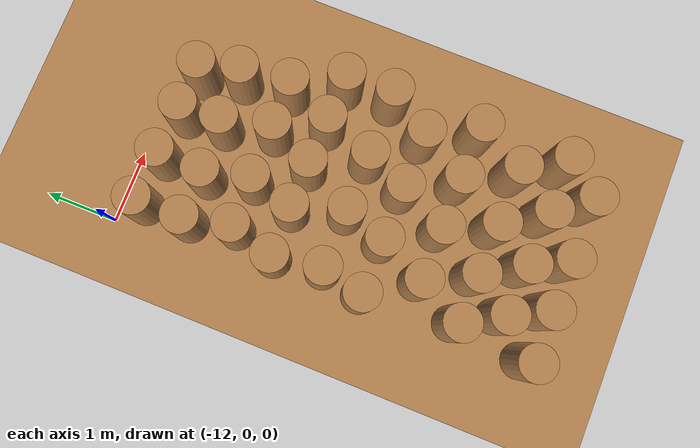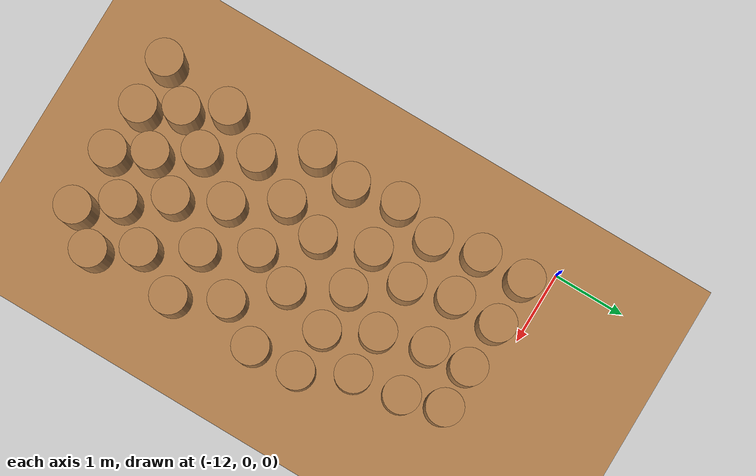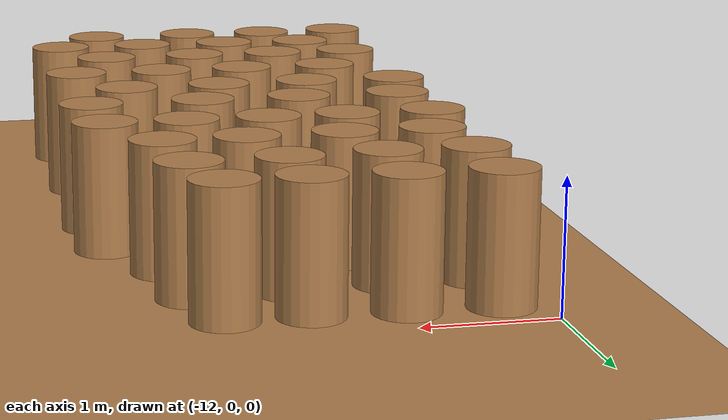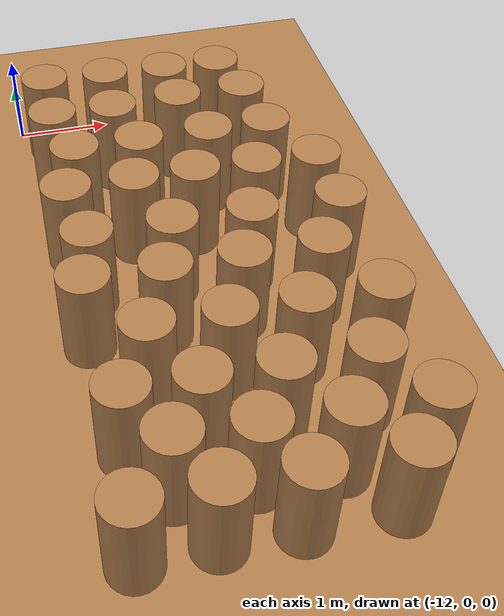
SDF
<sdf version="1.6">
 <world name="default">
  <model name="ground_plane">
   <pose>1.25 -2.75 0 0 -0 0</pose>
   <static>1</static>
   <link name="link">
    <collision name="collision">
     <geometry><plane><normal>0 0 1</normal><size>100 100</size></plane></geometry>
     <surface><friction><ode><mu>100</mu><mu2>50</mu2></ode></friction></surface>
    </collision>
    <visual name="visual">
     <cast_shadows>0</cast_shadows>
     <geometry><plane><normal>0 0 1</normal><size>32 34.75</size></plane></geometry>
     <material>
      <script><uri>file://media/materials/scripts/gazebo.material</uri><name>Gazebo/WoodFloor</name></script>
     </material>
    </visual>
   </link>
  </model>
  <model name="unit_cylinder_11_clone">
   <pose>-11.6124 -4.72432 0.499998 -1e-06 0 -1.1e-05</pose>
   <link name="link">
    <inertial>
     <mass>1</mass>
     <inertia><ixx>0.145833</ixx><ixy>0</ixy><ixz>0</ixz><iyy>0.145833</iyy><iyz>0</iyz><izz>0.125</izz></inertia>
    </inertial>
    <collision name="collision">
     <geometry><cylinder><radius>0.25</radius><length>1</length></cylinder></geometry>
    </collision>
    <visual name="visual">
     <geometry><cylinder><radius>0.25</radius><length>1</length></cylinder></geometry>
     <material>
      <script><name>Gazebo/Wood</name><uri>file://media/materials/scripts/gazebo.material</uri></script>
     </material>
    </visual>
   </link>
  </model>
  <model name="unit_cylinder_11_clone_0">
   <pose>-10.9561 -4.73459 0.499992 1e-06 -1e-06 -1.1e-05</pose>
   <link name="link">
    <inertial>
     <mass>1</mass>
     <inertia><ixx>0.145833</ixx><ixy>0</ixy><ixz>0</ixz><iyy>0.145833</iyy><iyz>0</iyz><izz>0.125</izz></inertia>
    </inertial>
    <collision name="collision">
     <geometry><cylinder><radius>0.25</radius><length>1</length></cylinder></geometry>
    </collision>
    <visual name="visual">
     <geometry><cylinder><radius>0.25</radius><length>1</length></cylinder></geometry>
     <material>
      <script><name>Gazebo/Wood</name><uri>file://media/materials/scripts/gazebo.material</uri></script>
     </material>
    </visual>
   </link>
  </model>
  <model name="unit_cylinder_11_clone_1">
   <pose>-10.263 -4.75411 0.499992 1e-06 -1e-06 -1.1e-05</pose>
   <link name="link">
    <inertial>
     <mass>1</mass>
     <inertia><ixx>0.145833</ixx><ixy>0</ixy><ixz>0</ixz><iyy>0.145833</iyy><iyz>0</iyz><izz>0.125</izz></inertia>
    </inertial>
    <collision name="collision">
     <geometry><cylinder><radius>0.25</radius><length>1</length></cylinder></geometry>
    </collision>
    <visual name="visual">
     <geometry><cylinder><radius>0.25</radius><length>1</length></cylinder></geometry>
     <material>
      <script><name>Gazebo/Wood</name><uri>file://media/materials/scripts/gazebo.material</uri></script>
     </material>
    </visual>
   </link>
  </model>
  <model name="unit_cylinder_11_clone_2">
   <pose>-9.48923 -4.75799 0.499992 1e-06 -0 -1e-05</pose>
   <link name="link">
    <inertial>
     <mass>1</mass>
     <inertia><ixx>0.145833</ixx><ixy>0</ixy><ixz>0</ixz><iyy>0.145833</iyy><iyz>0</iyz><izz>0.125</izz></inertia>
    </inertial>
    <collision name="collision">
     <geometry><cylinder><radius>0.25</radius><length>1</length></cylinder></geometry>
    </collision>
    <visual name="visual">
     <geometry><cylinder><radius>0.25</radius><length>1</length></cylinder></geometry>
     <material>
      <script><name>Gazebo/Wood</name><uri>file://media/materials/scripts/gazebo.material</uri></script>
     </material>
    </visual>
   </link>
  </model>
  <model name="unit_cylinder_11_clone_5">
   <pose>-11.2818 -4.1028 0.499998 -1e-06 1e-06 -1e-05</pose>
   <link name="link">
    <inertial>
     <mass>1</mass>
     <inertia><ixx>0.145833</ixx><ixy>0</ixy><ixz>0</ixz><iyy>0.145833</iyy><iyz>0</iyz><izz>0.125</izz></inertia>
    </inertial>
    <collision name="collision">
     <geometry><cylinder><radius>0.25</radius><length>1</length></cylinder></geometry>
    </collision>
    <visual name="visual">
     <geometry><cylinder><radius>0.25</radius><length>1</length></cylinder></geometry>
     <material>
      <script><name>Gazebo/Wood</name><uri>file://media/materials/scripts/gazebo.material</uri></script>
     </material>
    </visual>
   </link>
  </model>
  <model name="unit_cylinder_11_clone_6">
   <pose>-10.5621 -4.10904 0.499992 1e-06 -1e-06 -1e-05</pose>
   <link name="link">
    <inertial>
     <mass>1</mass>
     <inertia><ixx>0.145833</ixx><ixy>0</ixy><ixz>0</ixz><iyy>0.145833</iyy><iyz>0</iyz><izz>0.125</izz></inertia>
    </inertial>
    <collision name="collision">
     <geometry><cylinder><radius>0.25</radius><length>1</length></cylinder></geometry>
    </collision>
    <visual name="visual">
     <geometry><cylinder><radius>0.25</radius><length>1</length></cylinder></geometry>
     <material>
      <script><name>Gazebo/Wood</name><uri>file://media/materials/scripts/gazebo.material</uri></script>
     </material>
    </visual>
   </link>
  </model>
  <model name="unit_cylinder_11_clone_7">
   <pose>-9.87556 -4.10901 0.499998 -1e-06 1e-06 -9e-06</pose>
   <link name="link">
    <inertial>
     <mass>1</mass>
     <inertia><ixx>0.145833</ixx><ixy>0</ixy><ixz>0</ixz><iyy>0.145833</iyy><iyz>0</iyz><izz>0.125</izz></inertia>
    </inertial>
    <collision name="collision">
     <geometry><cylinder><radius>0.25</radius><length>1</length></cylinder></geometry>
    </collision>
    <visual name="visual">
     <geometry><cylinder><radius>0.25</radius><length>1</length></cylinder></geometry>
     <material>
      <script><name>Gazebo/Wood</name><uri>file://media/materials/scripts/gazebo.material</uri></script>
     </material>
    </visual>
   </link>
  </model>
  <model name="unit_cylinder_11_clone_8">
   <pose>-9.15933 -4.11899 0.499998 -1e-06 1e-06 -9e-06</pose>
   <link name="link">
    <inertial>
     <mass>1</mass>
     <inertia><ixx>0.145833</ixx><ixy>0</ixy><ixz>0</ixz><iyy>0.145833</iyy><iyz>0</iyz><izz>0.125</izz></inertia>
    </inertial>
    <collision name="collision">
     <geometry><cylinder><radius>0.25</radius><length>1</length></cylinder></geometry>
    </collision>
    <visual name="visual">
     <geometry><cylinder><radius>0.25</radius><length>1</length></cylinder></geometry>
     <material>
      <script><name>Gazebo/Wood</name><uri>file://media/materials/scripts/gazebo.material</uri></script>
     </material>
    </visual>
   </link>
  </model>
  <model name="unit_cylinder_11_clone_11">
   <pose>-11.7228 -3.45739 0.499998 -1e-06 1e-06 -9e-06</pose>
   <link name="link">
    <inertial>
     <mass>1</mass>
     <inertia><ixx>0.145833</ixx><ixy>0</ixy><ixz>0</ixz><iyy>0.145833</iyy><iyz>0</iyz><izz>0.125</izz></inertia>
    </inertial>
    <collision name="collision">
     <geometry><cylinder><radius>0.25</radius><length>1</length></cylinder></geometry>
    </collision>
    <visual name="visual">
     <geometry><cylinder><radius>0.25</radius><length>1</length></cylinder></geometry>
     <material>
      <script><name>Gazebo/Wood</name><uri>file://media/materials/scripts/gazebo.material</uri></script>
     </material>
    </visual>
   </link>
  </model>
  <model name="unit_cylinder_11_clone_12">
   <pose>-10.9848 -3.46683 0.499992 1e-06 -1e-06 -9e-06</pose>
   <link name="link">
    <inertial>
     <mass>1</mass>
     <inertia><ixx>0.145833</ixx><ixy>0</ixy><ixz>0</ixz><iyy>0.145833</iyy><iyz>0</iyz><izz>0.125</izz></inertia>
    </inertial>
    <collision name="collision">
     <geometry><cylinder><radius>0.25</radius><length>1</length></cylinder></geometry>
    </collision>
    <visual name="visual">
     <geometry><cylinder><radius>0.25</radius><length>1</length></cylinder></geometry>
     <material>
      <script><name>Gazebo/Wood</name><uri>file://media/materials/scripts/gazebo.material</uri></script>
     </material>
    </visual>
   </link>
  </model>
  <model name="unit_cylinder_11_clone_13">
   <pose>-10.2547 -3.46549 0.499992 1e-06 -1e-06 -9e-06</pose>
   <link name="link">
    <inertial>
     <mass>1</mass>
     <inertia><ixx>0.145833</ixx><ixy>0</ixy><ixz>0</ixz><iyy>0.145833</iyy><iyz>0</iyz><izz>0.125</izz></inertia>
    </inertial>
    <collision name="collision">
     <geometry><cylinder><radius>0.25</radius><length>1</length></cylinder></geometry>
    </collision>
    <visual name="visual">
     <geometry><cylinder><radius>0.25</radius><length>1</length></cylinder></geometry>
     <material>
      <script><name>Gazebo/Wood</name><uri>file://media/materials/scripts/gazebo.material</uri></script>
     </material>
    </visual>
   </link>
  </model>
  <model name="unit_cylinder_11_clone_14">
   <pose>-9.49879 -3.46332 0.499992 1e-06 -1e-06 -8e-06</pose>
   <link name="link">
    <inertial>
     <mass>1</mass>
     <inertia><ixx>0.145833</ixx><ixy>0</ixy><ixz>0</ixz><iyy>0.145833</iyy><iyz>0</iyz><izz>0.125</izz></inertia>
    </inertial>
    <collision name="collision">
     <geometry><cylinder><radius>0.25</radius><length>1</length></cylinder></geometry>
    </collision>
    <visual name="visual">
     <geometry><cylinder><radius>0.25</radius><length>1</length></cylinder></geometry>
     <material>
      <script><name>Gazebo/Wood</name><uri>file://media/materials/scripts/gazebo.material</uri></script>
     </material>
    </visual>
   </link>
  </model>
  <model name="unit_cylinder_11_clone_18">
   <pose>-11.6009 -2.88406 0.499992 1e-06 -1e-06 -8e-06</pose>
   <link name="link">
    <inertial>
     <mass>1</mass>
     <inertia><ixx>0.145833</ixx><ixy>0</ixy><ixz>0</ixz><iyy>0.145833</iyy><iyz>0</iyz><izz>0.125</izz></inertia>
    </inertial>
    <collision name="collision">
     <geometry><cylinder><radius>0.25</radius><length>1</length></cylinder></geometry>
    </collision>
    <visual name="visual">
     <geometry><cylinder><radius>0.25</radius><length>1</length></cylinder></geometry>
     <material>
      <script><name>Gazebo/Wood</name><uri>file://media/materials/scripts/gazebo.material</uri></script>
     </material>
    </visual>
   </link>
  </model>
  <model name="unit_cylinder_11_clone_19">
   <pose>-10.7969 -2.89238 0.499998 -1e-06 -0 -7e-06</pose>
   <link name="link">
    <inertial>
     <mass>1</mass>
     <inertia><ixx>0.145833</ixx><ixy>0</ixy><ixz>0</ixz><iyy>0.145833</iyy><iyz>0</iyz><izz>0.125</izz></inertia>
    </inertial>
    <collision name="collision">
     <geometry><cylinder><radius>0.25</radius><length>1</length></cylinder></geometry>
    </collision>
    <visual name="visual">
     <geometry><cylinder><radius>0.25</radius><length>1</length></cylinder></geometry>
     <material>
      <script><name>Gazebo/Wood</name><uri>file://media/materials/scripts/gazebo.material</uri></script>
     </material>
    </visual>
   </link>
  </model>
  <model name="unit_cylinder_11_clone_20">
   <pose>-10.0262 -2.9011 0.499998 -1e-06 1e-06 -7e-06</pose>
   <link name="link">
    <inertial>
     <mass>1</mass>
     <inertia><ixx>0.145833</ixx><ixy>0</ixy><ixz>0</ixz><iyy>0.145833</iyy><iyz>0</iyz><izz>0.125</izz></inertia>
    </inertial>
    <collision name="collision">
     <geometry><cylinder><radius>0.25</radius><length>1</length></cylinder></geometry>
    </collision>
    <visual name="visual">
     <geometry><cylinder><radius>0.25</radius><length>1</length></cylinder></geometry>
     <material>
      <script><name>Gazebo/Wood</name><uri>file://media/materials/scripts/gazebo.material</uri></script>
     </material>
    </visual>
   </link>
  </model>
  <model name="unit_cylinder_11_clone_21">
   <pose>-9.147 -2.89794 0.499998 -1e-06 1e-06 -7e-06</pose>
   <link name="link">
    <inertial>
     <mass>1</mass>
     <inertia><ixx>0.145833</ixx><ixy>0</ixy><ixz>0</ixz><iyy>0.145833</iyy><iyz>0</iyz><izz>0.125</izz></inertia>
    </inertial>
    <collision name="collision">
     <geometry><cylinder><radius>0.25</radius><length>1</length></cylinder></geometry>
    </collision>
    <visual name="visual">
     <geometry><cylinder><radius>0.25</radius><length>1</length></cylinder></geometry>
     <material>
      <script><name>Gazebo/Wood</name><uri>file://media/materials/scripts/gazebo.material</uri></script>
     </material>
    </visual>
   </link>
  </model>
  <model name="unit_cylinder_11_clone_24">
   <pose>-11.7024 -2.21373 0.499992 1e-06 -1e-06 -7e-06</pose>
   <link name="link">
    <inertial>
     <mass>1</mass>
     <inertia><ixx>0.145833</ixx><ixy>0</ixy><ixz>0</ixz><iyy>0.145833</iyy><iyz>0</iyz><izz>0.125</izz></inertia>
    </inertial>
    <collision name="collision">
     <geometry><cylinder><radius>0.25</radius><length>1</length></cylinder></geometry>
    </collision>
    <visual name="visual">
     <geometry><cylinder><radius>0.25</radius><length>1</length></cylinder></geometry>
     <material>
      <script><name>Gazebo/Wood</name><uri>file://media/materials/scripts/gazebo.material</uri></script>
     </material>
    </visual>
   </link>
  </model>
  <model name="unit_cylinder_11_clone_25">
   <pose>-11.0285 -2.20461 0.499998 -1e-06 1e-06 -7e-06</pose>
   <link name="link">
    <inertial>
     <mass>1</mass>
     <inertia><ixx>0.145833</ixx><ixy>0</ixy><ixz>0</ixz><iyy>0.145833</iyy><iyz>0</iyz><izz>0.125</izz></inertia>
    </inertial>
    <collision name="collision">
     <geometry><cylinder><radius>0.25</radius><length>1</length></cylinder></geometry>
    </collision>
    <visual name="visual">
     <geometry><cylinder><radius>0.25</radius><length>1</length></cylinder></geometry>
     <material>
      <script><name>Gazebo/Wood</name><uri>file://media/materials/scripts/gazebo.material</uri></script>
     </material>
    </visual>
   </link>
  </model>
  <model name="unit_cylinder_11_clone_26">
   <pose>-10.417 -2.21007 0.499998 -1e-06 -0 -6e-06</pose>
   <link name="link">
    <inertial>
     <mass>1</mass>
     <inertia><ixx>0.145833</ixx><ixy>0</ixy><ixz>0</ixz><iyy>0.145833</iyy><iyz>0</iyz><izz>0.125</izz></inertia>
    </inertial>
    <collision name="collision">
     <geometry><cylinder><radius>0.25</radius><length>1</length></cylinder></geometry>
    </collision>
    <visual name="visual">
     <geometry><cylinder><radius>0.25</radius><length>1</length></cylinder></geometry>
     <material>
      <script><name>Gazebo/Wood</name><uri>file://media/materials/scripts/gazebo.material</uri></script>
     </material>
    </visual>
   </link>
  </model>
  <model name="unit_cylinder_11_clone_27">
   <pose>-9.79237 -2.22769 0.499998 -1e-06 1e-06 -6e-06</pose>
   <link name="link">
    <inertial>
     <mass>1</mass>
     <inertia><ixx>0.145833</ixx><ixy>0</ixy><ixz>0</ixz><iyy>0.145833</iyy><iyz>0</iyz><izz>0.125</izz></inertia>
    </inertial>
    <collision name="collision">
     <geometry><cylinder><radius>0.25</radius><length>1</length></cylinder></geometry>
    </collision>
    <visual name="visual">
     <geometry><cylinder><radius>0.25</radius><length>1</length></cylinder></geometry>
     <material>
      <script><name>Gazebo/Wood</name><uri>file://media/materials/scripts/gazebo.material</uri></script>
     </material>
    </visual>
   </link>
  </model>
  <model name="unit_cylinder_11_clone_28">
   <pose>-9.17621 -2.24561 0.499992 1e-06 -1e-06 -6e-06</pose>
   <link name="link">
    <inertial>
     <mass>1</mass>
     <inertia><ixx>0.145833</ixx><ixy>0</ixy><ixz>0</ixz><iyy>0.145833</iyy><iyz>0</iyz><izz>0.125</izz></inertia>
    </inertial>
    <collision name="collision">
     <geometry><cylinder><radius>0.25</radius><length>1</length></cylinder></geometry>
    </collision>
    <visual name="visual">
     <geometry><cylinder><radius>0.25</radius><length>1</length></cylinder></geometry>
     <material>
      <script><name>Gazebo/Wood</name><uri>file://media/materials/scripts/gazebo.material</uri></script>
     </material>
    </visual>
   </link>
  </model>
  <model name="unit_cylinder_11_clone_31">
   <pose>-11.5317 -1.61689 0.499998 -1e-06 1e-06 -6e-06</pose>
   <link name="link">
    <inertial>
     <mass>1</mass>
     <inertia><ixx>0.145833</ixx><ixy>0</ixy><ixz>0</ixz><iyy>0.145833</iyy><iyz>0</iyz><izz>0.125</izz></inertia>
    </inertial>
    <collision name="collision">
     <geometry><cylinder><radius>0.25</radius><length>1</length></cylinder></geometry>
    </collision>
    <visual name="visual">
     <geometry><cylinder><radius>0.25</radius><length>1</length></cylinder></geometry>
     <material>
      <script><name>Gazebo/Wood</name><uri>file://media/materials/scripts/gazebo.material</uri></script>
     </material>
    </visual>
   </link>
  </model>
  <model name="unit_cylinder_11_clone_32">
   <pose>-10.867 -1.61135 0.499998 -1e-06 1e-06 -6e-06</pose>
   <link name="link">
    <inertial>
     <mass>1</mass>
     <inertia><ixx>0.145833</ixx><ixy>0</ixy><ixz>0</ixz><iyy>0.145833</iyy><iyz>0</iyz><izz>0.125</izz></inertia>
    </inertial>
    <collision name="collision">
     <geometry><cylinder><radius>0.25</radius><length>1</length></cylinder></geometry>
    </collision>
    <visual name="visual">
     <geometry><cylinder><radius>0.25</radius><length>1</length></cylinder></geometry>
     <material>
      <script><name>Gazebo/Wood</name><uri>file://media/materials/scripts/gazebo.material</uri></script>
     </material>
    </visual>
   </link>
  </model>
  <model name="unit_cylinder_11_clone_33">
   <pose>-10.135 -1.60365 0.499992 1e-06 -0 -6e-06</pose>
   <link name="link">
    <inertial>
     <mass>1</mass>
     <inertia><ixx>0.145833</ixx><ixy>0</ixy><ixz>0</ixz><iyy>0.145833</iyy><iyz>0</iyz><izz>0.125</izz></inertia>
    </inertial>
    <collision name="collision">
     <geometry><cylinder><radius>0.25</radius><length>1</length></cylinder></geometry>
    </collision>
    <visual name="visual">
     <geometry><cylinder><radius>0.25</radius><length>1</length></cylinder></geometry>
     <material>
      <script><name>Gazebo/Wood</name><uri>file://media/materials/scripts/gazebo.material</uri></script>
     </material>
    </visual>
   </link>
  </model>
  <model name="unit_cylinder_11_clone_34">
   <pose>-9.51681 -1.59973 0.499998 -1e-06 1e-06 -5e-06</pose>
   <link name="link">
    <inertial>
     <mass>1</mass>
     <inertia><ixx>0.145833</ixx><ixy>0</ixy><ixz>0</ixz><iyy>0.145833</iyy><iyz>0</iyz><izz>0.125</izz></inertia>
    </inertial>
    <collision name="collision">
     <geometry><cylinder><radius>0.25</radius><length>1</length></cylinder></geometry>
    </collision>
    <visual name="visual">
     <geometry><cylinder><radius>0.25</radius><length>1</length></cylinder></geometry>
     <material>
      <script><name>Gazebo/Wood</name><uri>file://media/materials/scripts/gazebo.material</uri></script>
     </material>
    </visual>
   </link>
  </model>
  <model name="unit_cylinder_11_clone_38">
   <pose>-11.6758 -0.987186 0.499992 1e-06 -1e-06 -5e-06</pose>
   <link name="link">
    <inertial>
     <mass>1</mass>
     <inertia><ixx>0.145833</ixx><ixy>0</ixy><ixz>0</ixz><iyy>0.145833</iyy><iyz>0</iyz><izz>0.125</izz></inertia>
    </inertial>
    <collision name="collision">
     <geometry><cylinder><radius>0.25</radius><length>1</length></cylinder></geometry>
    </collision>
    <visual name="visual">
     <geometry><cylinder><radius>0.25</radius><length>1</length></cylinder></geometry>
     <material>
      <script><name>Gazebo/Wood</name><uri>file://media/materials/scripts/gazebo.material</uri></script>
     </material>
    </visual>
   </link>
  </model>
  <model name="unit_cylinder_11_clone_39">
   <pose>-11.032 -0.993204 0.499992 1e-06 -0 -5e-06</pose>
   <link name="link">
    <inertial>
     <mass>1</mass>
     <inertia><ixx>0.145833</ixx><ixy>0</ixy><ixz>0</ixz><iyy>0.145833</iyy><iyz>0</iyz><izz>0.125</izz></inertia>
    </inertial>
    <collision name="collision">
     <geometry><cylinder><radius>0.25</radius><length>1</length></cylinder></geometry>
    </collision>
    <visual name="visual">
     <geometry><cylinder><radius>0.25</radius><length>1</length></cylinder></geometry>
     <material>
      <script><name>Gazebo/Wood</name><uri>file://media/materials/scripts/gazebo.material</uri></script>
     </material>
    </visual>
   </link>
  </model>
  <model name="unit_cylinder_11_clone_40">
   <pose>-10.3145 -0.94584 0.499998 -1e-06 1e-06 -4e-06</pose>
   <link name="link">
    <inertial>
     <mass>1</mass>
     <inertia><ixx>0.145833</ixx><ixy>0</ixy><ixz>0</ixz><iyy>0.145833</iyy><iyz>0</iyz><izz>0.125</izz></inertia>
    </inertial>
    <collision name="collision">
     <geometry><cylinder><radius>0.25</radius><length>1</length></cylinder></geometry>
    </collision>
    <visual name="visual">
     <geometry><cylinder><radius>0.25</radius><length>1</length></cylinder></geometry>
     <material>
      <script><name>Gazebo/Wood</name><uri>file://media/materials/scripts/gazebo.material</uri></script>
     </material>
    </visual>
   </link>
  </model>
  <model name="unit_cylinder_11_clone_41">
   <pose>-9.60199 -0.937148 0.499998 -1e-06 1e-06 -4e-06</pose>
   <link name="link">
    <inertial>
     <mass>1</mass>
     <inertia><ixx>0.145833</ixx><ixy>0</ixy><ixz>0</ixz><iyy>0.145833</iyy><iyz>0</iyz><izz>0.125</izz></inertia>
    </inertial>
    <collision name="collision">
     <geometry><cylinder><radius>0.25</radius><length>1</length></cylinder></geometry>
    </collision>
    <visual name="visual">
     <geometry><cylinder><radius>0.25</radius><length>1</length></cylinder></geometry>
     <material>
      <script><name>Gazebo/Wood</name><uri>file://media/materials/scripts/gazebo.material</uri></script>
     </material>
    </visual>
   </link>
  </model>
  <model name="unit_cylinder_11_clone_45">
   <pose>-11.6781 -0.337944 0.499992 1e-06 -1e-06 -4e-06</pose>
   <link name="link">
    <inertial>
     <mass>1</mass>
     <inertia><ixx>0.145833</ixx><ixy>0</ixy><ixz>0</ixz><iyy>0.145833</iyy><iyz>0</iyz><izz>0.125</izz></inertia>
    </inertial>
    <collision name="collision">
     <geometry><cylinder><radius>0.25</radius><length>1</length></cylinder></geometry>
    </collision>
    <visual name="visual">
     <geometry><cylinder><radius>0.25</radius><length>1</length></cylinder></geometry>
     <material>
      <script><name>Gazebo/Wood</name><uri>file://media/materials/scripts/gazebo.material</uri></script>
     </material>
    </visual>
   </link>
  </model>
  <model name="unit_cylinder_11_clone_46">
   <pose>-11.0081 -0.357725 0.499992 1e-06 -0 -4e-06</pose>
   <link name="link">
    <inertial>
     <mass>1</mass>
     <inertia><ixx>0.145833</ixx><ixy>0</ixy><ixz>0</ixz><iyy>0.145833</iyy><iyz>0</iyz><izz>0.125</izz></inertia>
    </inertial>
    <collision name="collision">
     <geometry><cylinder><radius>0.25</radius><length>1</length></cylinder></geometry>
    </collision>
    <visual name="visual">
     <geometry><cylinder><radius>0.25</radius><length>1</length></cylinder></geometry>
     <material>
      <script><name>Gazebo/Wood</name><uri>file://media/materials/scripts/gazebo.material</uri></script>
     </material>
    </visual>
   </link>
  </model>
  <model name="unit_cylinder_11_clone_47">
   <pose>-10.3461 -0.390137 0.499992 1e-06 -1e-06 -3e-06</pose>
   <link name="link">
    <inertial>
     <mass>1</mass>
     <inertia><ixx>0.145833</ixx><ixy>0</ixy><ixz>0</ixz><iyy>0.145833</iyy><iyz>0</iyz><izz>0.125</izz></inertia>
    </inertial>
    <collision name="collision">
     <geometry><cylinder><radius>0.25</radius><length>1</length></cylinder></geometry>
    </collision>
    <visual name="visual">
     <geometry><cylinder><radius>0.25</radius><length>1</length></cylinder></geometry>
     <material>
      <script><name>Gazebo/Wood</name><uri>file://media/materials/scripts/gazebo.material</uri></script>
     </material>
    </visual>
   </link>
  </model>
  <model name="unit_cylinder_11_clone_48">
   <pose>-9.75108 -0.391677 0.499998 -1e-06 1e-06 -3e-06</pose>
   <link name="link">
    <inertial>
     <mass>1</mass>
     <inertia><ixx>0.145833</ixx><ixy>0</ixy><ixz>0</ixz><iyy>0.145833</iyy><iyz>0</iyz><izz>0.125</izz></inertia>
    </inertial>
    <collision name="collision">
     <geometry><cylinder><radius>0.25</radius><length>1</length></cylinder></geometry>
    </collision>
    <visual name="visual">
     <geometry><cylinder><radius>0.25</radius><length>1</length></cylinder></geometry>
     <material>
      <script><name>Gazebo/Wood</name><uri>file://media/materials/scripts/gazebo.material</uri></script>
     </material>
    </visual>
   </link>
  </model>
  <model name="unit_cylinder_11_clone_clone">
   <pose>-11.3091 -5.23276 0.499998 -2e-06 1e-06 -9e-06</pose>
   <link name="link">
    <inertial>
     <mass>1</mass>
     <inertia><ixx>0.145833</ixx><ixy>0</ixy><ixz>0</ixz><iyy>0.145833</iyy><iyz>0</iyz><izz>0.125</izz></inertia>
    </inertial>
    <collision name="collision">
     <geometry><cylinder><radius>0.25</radius><length>1</length></cylinder></geometry>
    </collision>
    <visual name="visual">
     <geometry><cylinder><radius>0.25</radius><length>1</length></cylinder></geometry>
     <material>
      <script><name>Gazebo/Wood</name><uri>file://media/materials/scripts/gazebo.material</uri></script>
     </material>
    </visual>
   </link>
  </model>
  <model name="unit_cylinder_11_clone_clone_0">
   <pose>-10.6176 -5.27638 0.499998 -2e-06 1e-06 -9e-06</pose>
   <link name="link">
    <inertial>
     <mass>1</mass>
     <inertia><ixx>0.145833</ixx><ixy>0</ixy><ixz>0</ixz><iyy>0.145833</iyy><iyz>0</iyz><izz>0.125</izz></inertia>
    </inertial>
    <collision name="collision">
     <geometry><cylinder><radius>0.25</radius><length>1</length></cylinder></geometry>
    </collision>
    <visual name="visual">
     <geometry><cylinder><radius>0.25</radius><length>1</length></cylinder></geometry>
     <material>
      <script><name>Gazebo/Wood</name><uri>file://media/materials/scripts/gazebo.material</uri></script>
     </material>
    </visual>
   </link>
  </model>
  <model name="unit_cylinder_11_clone_clone_1">
   <pose>-9.87665 -5.3009 0.499999 -1e-06 -0 -9e-06</pose>
   <link name="link">
    <inertial>
     <mass>1</mass>
     <inertia><ixx>0.145833</ixx><ixy>0</ixy><ixz>0</ixz><iyy>0.145833</iyy><iyz>0</iyz><izz>0.125</izz></inertia>
    </inertial>
    <collision name="collision">
     <geometry><cylinder><radius>0.25</radius><length>1</length></cylinder></geometry>
    </collision>
    <visual name="visual">
     <geometry><cylinder><radius>0.25</radius><length>1</length></cylinder></geometry>
     <material>
      <script><name>Gazebo/Wood</name><uri>file://media/materials/scripts/gazebo.material</uri></script>
     </material>
    </visual>
   </link>
  </model>
  <model name="unit_cylinder_11_clone_clone_2">
   <pose>-9.14355 -5.30483 0.499999 -1e-06 -0 -9e-06</pose>
   <link name="link">
    <inertial>
     <mass>1</mass>
     <inertia><ixx>0.145833</ixx><ixy>0</ixy><ixz>0</ixz><iyy>0.145833</iyy><iyz>0</iyz><izz>0.125</izz></inertia>
    </inertial>
    <collision name="collision">
     <geometry><cylinder><radius>0.25</radius><length>1</length></cylinder></geometry>
    </collision>
    <visual name="visual">
     <geometry><cylinder><radius>0.25</radius><length>1</length></cylinder></geometry>
     <material>
      <script><name>Gazebo/Wood</name><uri>file://media/materials/scripts/gazebo.material</uri></script>
     </material>
    </visual>
   </link>
  </model>
  <model name="unit_cylinder_11_clone_clone_5">
   <pose>-11.7326 -5.74175 0.499991 -1e-06 -0 -1.2e-05</pose>
   <link name="link">
    <inertial>
     <mass>1</mass>
     <inertia><ixx>0.145833</ixx><ixy>0</ixy><ixz>0</ixz><iyy>0.145833</iyy><iyz>0</iyz><izz>0.125</izz></inertia>
    </inertial>
    <collision name="collision">
     <geometry><cylinder><radius>0.25</radius><length>1</length></cylinder></geometry>
    </collision>
    <visual name="visual">
     <geometry><cylinder><radius>0.25</radius><length>1</length></cylinder></geometry>
     <material>
      <script><name>Gazebo/Wood</name><uri>file://media/materials/scripts/gazebo.material</uri></script>
     </material>
    </visual>
   </link>
  </model>
  <model name="unit_cylinder_11_clone_clone_6">
   <pose>-11.0496 -5.72337 0.5 0 0 -8e-06</pose>
   <link name="link">
    <inertial>
     <mass>1</mass>
     <inertia><ixx>0.145833</ixx><ixy>0</ixy><ixz>0</ixz><iyy>0.145833</iyy><iyz>0</iyz><izz>0.125</izz></inertia>
    </inertial>
    <collision name="collision">
     <geometry><cylinder><radius>0.25</radius><length>1</length></cylinder></geometry>
    </collision>
    <visual name="visual">
     <geometry><cylinder><radius>0.25</radius><length>1</length></cylinder></geometry>
     <material>
      <script><name>Gazebo/Wood</name><uri>file://media/materials/scripts/gazebo.material</uri></script>
     </material>
    </visual>
   </link>
  </model>
  <model name="unit_cylinder_11_clone_clone_7">
   <pose>-10.3567 -5.75211 0.499996 -2e-06 -1e-06 0.00322</pose>
   <link name="link">
    <inertial>
     <mass>1</mass>
     <inertia><ixx>0.145833</ixx><ixy>0</ixy><ixz>0</ixz><iyy>0.145833</iyy><iyz>0</iyz><izz>0.125</izz></inertia>
    </inertial>
    <collision name="collision">
     <geometry><cylinder><radius>0.25</radius><length>1</length></cylinder></geometry>
    </collision>
    <visual name="visual">
     <geometry><cylinder><radius>0.25</radius><length>1</length></cylinder></geometry>
     <material>
      <script><name>Gazebo/Wood</name><uri>file://media/materials/scripts/gazebo.material</uri></script>
     </material>
    </visual>
   </link>
  </model>
  <model name="unit_cylinder_11_clone_clone_8">
   <pose>-9.51768 -5.76185 0.5 1e-06 -1e-06 0.006281</pose>
   <link name="link">
    <inertial>
     <mass>1</mass>
     <inertia><ixx>0.145833</ixx><ixy>0</ixy><ixz>0</ixz><iyy>0.145833</iyy><iyz>0</iyz><izz>0.125</izz></inertia>
    </inertial>
    <collision name="collision">
     <geometry><cylinder><radius>0.25</radius><length>1</length></cylinder></geometry>
    </collision>
    <visual name="visual">
     <geometry><cylinder><radius>0.25</radius><length>1</length></cylinder></geometry>
     <material>
      <script><name>Gazebo/Wood</name><uri>file://media/materials/scripts/gazebo.material</uri></script>
     </material>
    </visual>
   </link>
  </model>
 </world>
</sdf>
